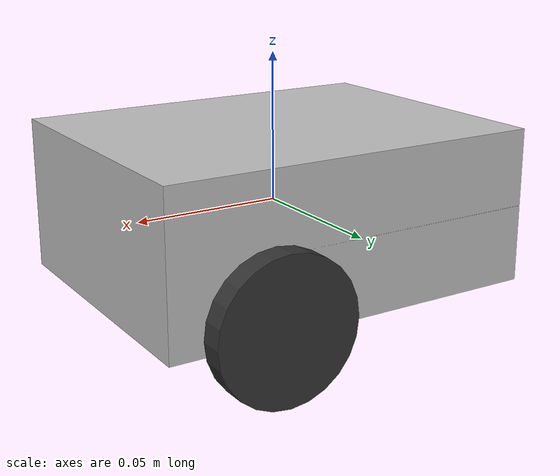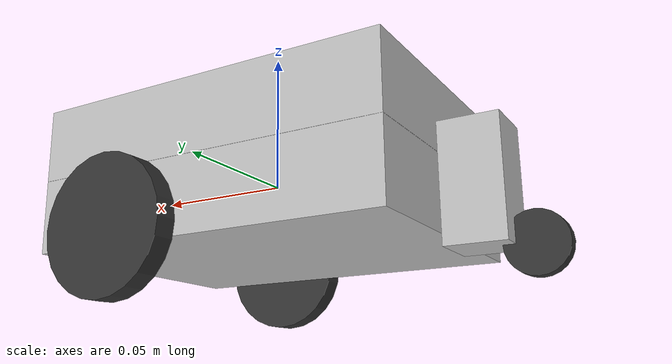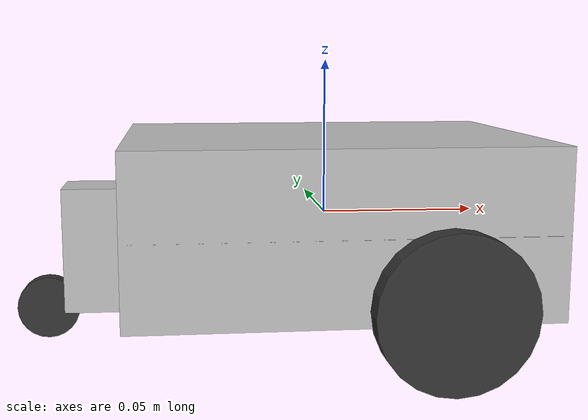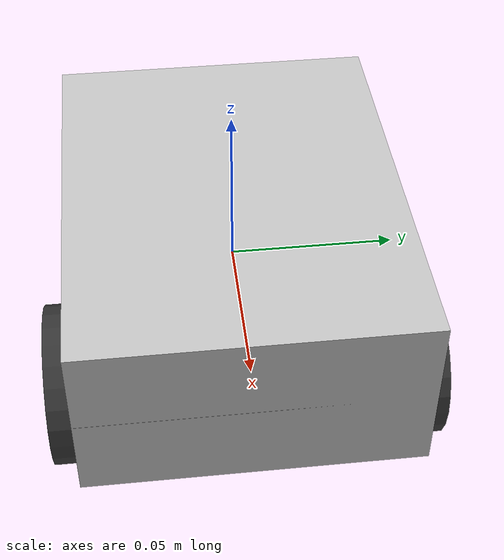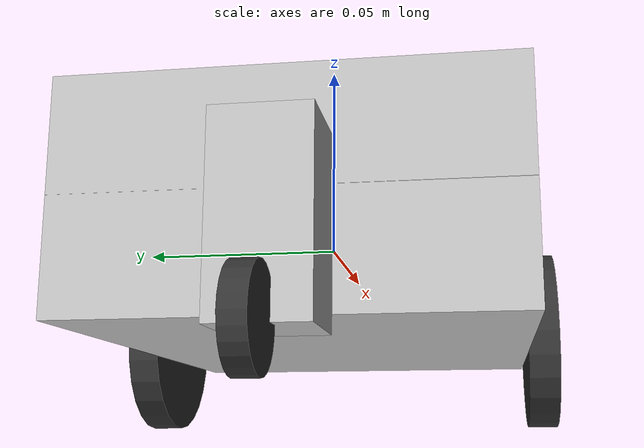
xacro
<?xml version="1.0" ?>
<robot name="robot" xmlns:xacro="http://ros.org/wiki/xacro">
    <material name="black">
        <color rgba="0.2 0.2 0.2 1"/>
    </material>
    <material name="grey">
        <color rgba="0.75 0.75 0.75 1"/>
    </material>
    <link name="base_link">
        <visual>
            <geometry>
                <box size="0.13 0.1 0.052"/>
            </geometry>
            <origin xyz="0 0 0" rpy="0 0 0"/>
            <material name="grey"/>
        </visual>
        <collision>
            <geometry>
                <box size="0.13 0.1 0.052"/>
            </geometry>
            <origin xyz="0 0 0.013" rpy="0 0 0"/>
        </collision>
        <inertial>
            <mass value="0.25" />
            <origin xyz="0 0 0.013" rpy="0 0 0"/>
            <inertia ixx="0.000335083333333" ixy="0.0" ixz="0.0"
                    iyy="0.000478833333333" iyz="0.0"
                    izz="0.000560416666667" />
        </inertial>
    </link>

    <!-- Add base_footprint link -->
    <link name="base_footprint">
        <visual>
            <geometry>
                <box size="0.13 0.1 0.0001"/> <!-- Flat representation -->
            </geometry>
            <origin xyz="0 0 0" rpy="0 0 0"/>
            <material name="grey"/>
        </visual>
        <collision>
            <geometry>
                <box size="0.13 0.1 0.0001"/> <!-- Flat representation -->
            </geometry>
            <origin xyz="0 0 0" rpy="0 0 0"/>
        </collision>
        <inertial>
            <mass value="0.0" /> <!-- No mass for footprint -->
            <origin xyz="0 0 0" rpy="0 0 0"/>
            <inertia ixx="0" ixy="0" ixz="0" iyy="0" iyz="0" izz="0"/>
        </inertial>
    </link>

    <!-- Add fixed joint between base_link and base_footprint -->
    <joint name="base_footprint_joint" type="fixed">
        <parent link="base_link"/>
        <child link="base_footprint"/>
        <origin xyz="0 0 0" rpy="0 0 0"/> <!-- Position is the same as base_link -->
    </joint>

    <!-- Other existing links and joints -->
    <joint name="caster_support_joint" type="continuous">
        <axis xyz="0 0 1"/>
        <parent link="base_link"/>
        <child link="caster_support"/>
        <origin xyz="-0.085 0 -0.01" rpy="0 0 0"/>
    </joint>
    <link name="caster_support">
        <visual>
            <geometry>
                <box size="0.02 0.02 0.04"/>
            </geometry>
            <origin xyz="0.01 0 0" rpy="0 0 0"/>
            <material name="grey"/>
        </visual>
        <collision>
            <geometry>
                <box size="0.02 0.02 0.04"/>
            </geometry>
            <origin xyz="0.01 0 0" rpy="0 0 0"/>
        </collision>
        <inertial>
            <mass value="0.25" />
            <origin xyz="0.01 0 0" rpy="0 0 0"/>
            <inertia ixx="1.66666666666667e-5" ixy="0.0" ixz="0.0"
                    iyy="2.66666666666667e-5" iyz="0.0"
                    izz="1.66666666666667e-5" />
        </inertial>
    </link>
    <link name="caster_wheel">
        <visual>
            <geometry>
                <cylinder length="0.005" radius="0.01"/>
            </geometry>
            <origin rpy="-1.5708 0 0"/>
            <material name="black"/>
        </visual>
        <collision>
            <geometry>
                <cylinder length="0.005" radius="0.01"/>
            </geometry>
            <origin rpy="-1.5708 0 0"/>
        </collision>
        <inertial>
            <mass value="0.01" />
            <origin rpy="-1.5708 0 0"/>
              <inertia
                   ixx="0.0000005" ixy="0.0" ixz="0.0"
                   iyy="0.000000270833" iyz="0.0"
                   izz="0.000000270833"/>
        </inertial>
    </link>
    <joint name="caster_wheel_joint" type="continuous">
        <axis xyz="0 1 0"/>
        <parent link="caster_support"/>
        <child link="caster_wheel"/>
        <origin xyz="-0.006 0 -0.02" rpy="0 0 0" />
        <dynamics damping="0.3" friction="0.0"/>
    </joint>

    <link name="right_wheel">
        <visual>
            <geometry>
                <cylinder length="0.008" radius="0.024"/>
            </geometry>
            <material name="black"/>
            <origin rpy="-1.5708 0 0"/>
        </visual>
        <collision>
            <geometry>
                <cylinder length="0.008" radius="0.024"/>
            </geometry>
            <origin rpy="-1.5708 0 0"/>
        </collision>
        <inertial>
            <mass value="0.1" />
            <origin rpy="-1.5708 0 0"/>
            <inertia ixx="1.49333333333333e-5" ixy="0.0" ixz="0.0"
                    iyy="1.49333333333333e-5" iyz="0.0"
                    izz="2.88e-5" />
        </inertial>
    </link>
    <joint name="right_wheel_joint" type="continuous">
        <axis xyz="0 1 0"/>
        <parent link="base_link"/>
        <child link="right_wheel"/>
        <origin xyz="0.03 -0.054 -0.021"/>
        <dynamics damping="0.1" friction="0.0"/>
    </joint>
    <link name="left_wheel">
        <visual>
            <geometry>
                <cylinder length="0.008" radius="0.024"/>
            </geometry>
            <material name="black"/>
            <origin rpy="-1.5708 0 0"/>
        </visual>
        <collision>
            <geometry>
                <cylinder length="0.008" radius="0.024"/>
            </geometry>
            <origin rpy="-1.5708 0 0"/>
        </collision>
        <inertial>
            <mass value="0.1" />
            <origin rpy="-1.5708 0 0"/>
            <inertia ixx="1.49333333333333e-5" ixy="0.0" ixz="0.0"
                    iyy="1.49333333333333e-5" iyz="0.0"
                    izz="2.88e-5" />
        </inertial>
  </link>
  <joint name="left_wheel_joint" type="continuous">
        <axis xyz="0 1 0"/>
        <parent link="base_link"/>
        <child link="left_wheel"/>
        <origin xyz="0.03 0.054 -0.021"/>
        <dynamics damping="0.1" friction="0.0"/>
  </joint>
</robot>
